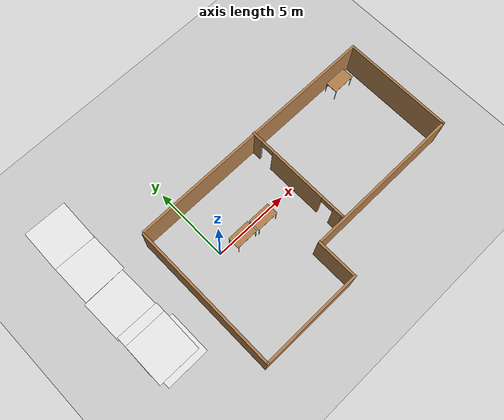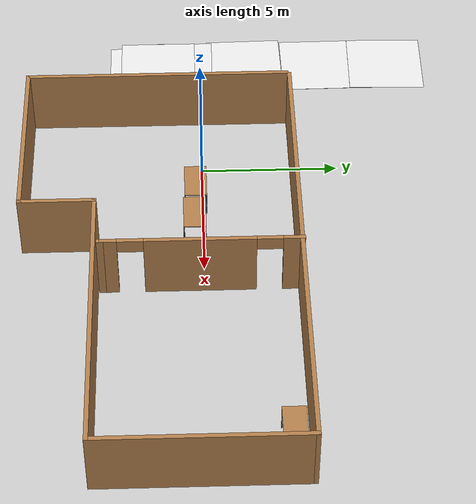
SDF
<sdf version="1.7">
 <world name="default">
  <light name="sun" type="directional">
   <pose>0 0 10 0 -0 0</pose>
   <diffuse>0.8 0.8 0.8 1</diffuse>
   <specular>0.2 0.2 0.2 1</specular>
   <attenuation>
    <range>1000</range>
    <constant>0.9</constant>
    <linear>0.01</linear>
    <quadratic>0.001</quadratic>
   </attenuation>
   <direction>-0.5 0.1 -0.9</direction>
   <spot><inner_angle>0</inner_angle><outer_angle>0</outer_angle><falloff>0</falloff></spot>
  </light>
  <model name="ground_plane">
   <static>1</static>
   <link name="link">
    <collision name="collision">
     <geometry><plane><normal>0 0 1</normal><size>100 100</size></plane></geometry>
     <surface><friction><ode><mu>100</mu><mu2>50</mu2></ode></friction></surface>
    </collision>
    <visual name="visual">
     <cast_shadows>0</cast_shadows>
     <geometry><plane><normal>0 0 1</normal><size>100 100</size></plane></geometry>
     <material>
      <script><uri>file://media/materials/scripts/gazebo.material</uri><name>Gazebo/Grey</name></script>
     </material>
    </visual>
   </link>
  </model>
  <gravity>0 0 -9.8</gravity>
  <magnetic_field>6e-06 2.3e-05 -4.2e-05</magnetic_field>
  <atmosphere type="adiabatic"/>
  <physics type="ode">
   <max_step_size>0.001</max_step_size>
   <real_time_factor>1</real_time_factor>
   <real_time_update_rate>1000</real_time_update_rate>
  </physics>
  <scene><ambient>0.4 0.4 0.4 1</ambient><background>0.7 0.7 0.7 1</background><shadows>1</shadows></scene>
  <audio><device>default</device></audio>
  <spherical_coordinates>
   <surface_model>EARTH_WGS84</surface_model>
   <latitude_deg>0</latitude_deg>
   <longitude_deg>0</longitude_deg>
   <elevation>0</elevation>
   <heading_deg>0</heading_deg>
  </spherical_coordinates>
  <model name="two_rooms_textured">
   <pose>5.81924 -1.50484 0 0 -0 0</pose>
   <link name="Wall_1">
    <collision name="Wall_1_Collision">
     <geometry><box><size>9.75 0.15 2.5</size></box></geometry>
     <pose>0 0 1.25 0 -0 0</pose>
    </collision>
    <visual name="Wall_1_Visual">
     <pose>0 0 1.25 0 -0 0</pose>
     <geometry><box><size>9.75 0.15 2.5</size></box></geometry>
     <material>
      <script><uri>file://media/materials/scripts/gazebo.material</uri><name>Gazebo/Wood</name></script>
      <ambient>1 1 1 1</ambient>
     </material>
     <meta><layer>0</layer></meta>
    </visual>
    <pose>-8.475 -0.066268 0 0 -0 -1.5708</pose>
   </link>
   <link name="Wall_10">
    <collision name="Wall_10_Collision">
     <geometry><box><size>0.25 0.15 2.5</size></box></geometry>
     <pose>0 0 1.25 0 -0 0</pose>
    </collision>
    <visual name="Wall_10_Visual">
     <pose>0 0 1.25 0 -0 0</pose>
     <geometry><box><size>0.25 0.15 2.5</size></box></geometry>
     <material>
      <script><uri>file://media/materials/scripts/gazebo.material</uri><name>Gazebo/Wood</name></script>
      <ambient>1 1 1 1</ambient>
     </material>
     <meta><layer>0</layer></meta>
    </visual>
    <pose>0.118491 -2.03373 0 0 -0 -1.5708</pose>
   </link>
   <link name="Wall_2">
    <collision name="Wall_2_Collision">
     <geometry><box><size>6.75 0.15 2.5</size></box></geometry>
     <pose>0 0 1.25 0 -0 0</pose>
    </collision>
    <visual name="Wall_2_Visual">
     <pose>0 0 1.25 0 -0 0</pose>
     <geometry><box><size>6.75 0.15 2.5</size></box></geometry>
     <material>
      <script><uri>file://media/materials/scripts/gazebo.material</uri><name>Gazebo/Wood</name></script>
      <ambient>1 1 1 1</ambient>
     </material>
     <meta><layer>0</layer></meta>
    </visual>
    <pose>-5.175 -4.86627 0 0 -0 0</pose>
   </link>
   <link name="Wall_3">
    <collision name="Wall_3_Collision">
     <geometry><box><size>2.75 0.15 2.5</size></box></geometry>
     <pose>0 0 1.25 0 -0 0</pose>
    </collision>
    <visual name="Wall_3_Visual">
     <pose>0 0 1.25 0 -0 0</pose>
     <geometry><box><size>2.75 0.15 2.5</size></box></geometry>
     <material>
      <script><uri>file://media/materials/scripts/gazebo.material</uri><name>Gazebo/Wood</name></script>
      <ambient>1 1 1 1</ambient>
     </material>
     <meta><layer>0</layer></meta>
    </visual>
    <pose>-1.875 -3.56627 0 0 -0 1.5708</pose>
   </link>
   <link name="Wall_4">
    <collision name="Wall_4_Collision">
     <geometry><box><size>10.5 0.15 2.5</size></box></geometry>
     <pose>0 0 1.25 0 -0 0</pose>
    </collision>
    <visual name="Wall_4_Visual">
     <pose>0 0 1.25 0 -0 0</pose>
     <geometry><box><size>10.5 0.15 2.5</size></box></geometry>
     <material>
      <script><uri>file://media/materials/scripts/gazebo.material</uri><name>Gazebo/Wood</name></script>
      <ambient>1 1 1 1</ambient>
     </material>
     <meta><layer>0</layer></meta>
    </visual>
    <pose>3.3 -2.26627 0 0 -0 0</pose>
   </link>
   <link name="Wall_5">
    <collision name="Wall_5_Collision">
     <geometry><box><size>7.25 0.15 2.5</size></box></geometry>
     <pose>0 0 1.25 0 -0 0</pose>
    </collision>
    <visual name="Wall_5_Visual">
     <pose>0 0 1.25 0 -0 0</pose>
     <geometry><box><size>7.25 0.15 2.5</size></box></geometry>
     <material>
      <script><uri>file://media/materials/scripts/gazebo.material</uri><name>Gazebo/Wood</name></script>
      <ambient>1 1 1 1</ambient>
     </material>
     <meta><layer>0</layer></meta>
    </visual>
    <pose>8.475 1.28373 0 0 -0 1.5708</pose>
   </link>
   <link name="Wall_6">
    <collision name="Wall_6_Collision">
     <geometry><box><size>17 0.15 2.5</size></box></geometry>
     <pose>0 0 1.25 0 -0 0</pose>
    </collision>
    <visual name="Wall_6_Visual">
     <pose>0 0 1.25 0 -0 0</pose>
     <geometry><box><size>17 0.15 2.5</size></box></geometry>
     <material>
      <script><uri>file://media/materials/scripts/gazebo.material</uri><name>Gazebo/Wood</name></script>
      <ambient>1 1 1 1</ambient>
     </material>
     <meta><layer>0</layer></meta>
    </visual>
    <pose>0.05 4.83373 0 0 -0 3.14159</pose>
   </link>
   <link name="Wall_8">
    <pose>0.118491 1.44127 0 0 -0 -1.5708</pose>
    <visual name="Wall_8_Visual_0">
     <pose>-3.12464 0 1.25 0 -0 0</pose>
     <geometry><box><size>0.750721 0.15 2.5</size></box></geometry>
     <material>
      <script><uri>file://media/materials/scripts/gazebo.material</uri><name>Gazebo/Wood</name></script>
      <ambient>1 1 1 1</ambient>
     </material>
     <meta><layer>0</layer></meta>
    </visual>
    <collision name="Wall_8_Collision_0">
     <geometry><box><size>0.750721 0.15 2.5</size></box></geometry>
     <pose>-3.12464 0 1.25 0 -0 0</pose>
    </collision>
    <visual name="Wall_8_Visual_1">
     <pose>0.075287 0 1.25 0 -0 0</pose>
     <geometry><box><size>3.84913 0.15 2.5</size></box></geometry>
     <material>
      <script><uri>file://media/materials/scripts/gazebo.material</uri><name>Gazebo/Wood</name></script>
      <ambient>1 1 1 1</ambient>
     </material>
     <meta><layer>0</layer></meta>
    </visual>
    <collision name="Wall_8_Collision_1">
     <geometry><box><size>3.84913 0.15 2.5</size></box></geometry>
     <pose>0.075287 0 1.25 0 -0 0</pose>
    </collision>
    <visual name="Wall_8_Visual_2">
     <pose>3.19993 0 1.25 0 -0 0</pose>
     <geometry><box><size>0.600146 0.15 2.5</size></box></geometry>
     <material>
      <script><uri>file://media/materials/scripts/gazebo.material</uri><name>Gazebo/Wood</name></script>
      <ambient>1 1 1 1</ambient>
     </material>
     <meta><layer>0</layer></meta>
    </visual>
    <collision name="Wall_8_Collision_2">
     <geometry><box><size>0.600146 0.15 2.5</size></box></geometry>
     <pose>3.19993 0 1.25 0 -0 0</pose>
    </collision>
    <visual name="Wall_8_Visual_3">
     <pose>-2.29928 0 2.25 0 -0 0</pose>
     <geometry><box><size>0.9 0.15 0.5</size></box></geometry>
     <material>
      <script><uri>file://media/materials/scripts/gazebo.material</uri><name>Gazebo/Wood</name></script>
      <ambient>1 1 1 1</ambient>
     </material>
     <meta><layer>0</layer></meta>
    </visual>
    <collision name="Wall_8_Collision_3">
     <geometry><box><size>0.9 0.15 0.5</size></box></geometry>
     <pose>-2.29928 0 2.25 0 -0 0</pose>
    </collision>
    <visual name="Wall_8_Visual_4">
     <pose>2.44985 0 2.25 0 -0 0</pose>
     <geometry><box><size>0.9 0.15 0.5</size></box></geometry>
     <material>
      <script><uri>file://media/materials/scripts/gazebo.material</uri><name>Gazebo/Wood</name></script>
      <ambient>1 1 1 1</ambient>
     </material>
     <meta><layer>0</layer></meta>
    </visual>
    <collision name="Wall_8_Collision_4">
     <geometry><box><size>0.9 0.15 0.5</size></box></geometry>
     <pose>2.44985 0 2.25 0 -0 0</pose>
    </collision>
   </link>
   <static>1</static>
  </model>
  <model name="table">
   <static>1</static>
   <link name="link">
    <collision name="surface">
     <pose>0 0 1 0 -0 0</pose>
     <geometry><box><size>1.5 0.8 0.03</size></box></geometry>
     <surface><friction><ode><mu>0.6</mu><mu2>0.6</mu2></ode></friction></surface>
    </collision>
    <visual name="visual1">
     <pose>0 0 1 0 -0 0</pose>
     <geometry><box><size>1.5 0.8 0.03</size></box></geometry>
     <material>
      <script><uri>file://media/materials/scripts/gazebo.material</uri><name>Gazebo/Wood</name></script>
     </material>
    </visual>
    <collision name="front_left_leg">
     <pose>0.68 0.38 0.5 0 -0 0</pose>
     <geometry><cylinder><radius>0.02</radius><length>1</length></cylinder></geometry>
    </collision>
    <visual name="front_left_leg">
     <pose>0.68 0.38 0.5 0 -0 0</pose>
     <geometry><cylinder><radius>0.02</radius><length>1</length></cylinder></geometry>
     <material>
      <script><uri>file://media/materials/scripts/gazebo.material</uri><name>Gazebo/Grey</name></script>
     </material>
    </visual>
    <collision name="front_right_leg">
     <pose>0.68 -0.38 0.5 0 -0 0</pose>
     <geometry><cylinder><radius>0.02</radius><length>1</length></cylinder></geometry>
    </collision>
    <visual name="front_right_leg">
     <pose>0.68 -0.38 0.5 0 -0 0</pose>
     <geometry><cylinder><radius>0.02</radius><length>1</length></cylinder></geometry>
     <material>
      <script><uri>file://media/materials/scripts/gazebo.material</uri><name>Gazebo/Grey</name></script>
     </material>
    </visual>
    <collision name="back_right_leg">
     <pose>-0.68 -0.38 0.5 0 -0 0</pose>
     <geometry><cylinder><radius>0.02</radius><length>1</length></cylinder></geometry>
    </collision>
    <visual name="back_right_leg">
     <pose>-0.68 -0.38 0.5 0 -0 0</pose>
     <geometry><cylinder><radius>0.02</radius><length>1</length></cylinder></geometry>
     <material>
      <script><uri>file://media/materials/scripts/gazebo.material</uri><name>Gazebo/Grey</name></script>
     </material>
    </visual>
    <collision name="back_left_leg">
     <pose>-0.68 0.38 0.5 0 -0 0</pose>
     <geometry><cylinder><radius>0.02</radius><length>1</length></cylinder></geometry>
    </collision>
    <visual name="back_left_leg">
     <pose>-0.68 0.38 0.5 0 -0 0</pose>
     <geometry><cylinder><radius>0.02</radius><length>1</length></cylinder></geometry>
     <material>
      <script><uri>file://media/materials/scripts/gazebo.material</uri><name>Gazebo/Grey</name></script>
     </material>
    </visual>
   </link>
   <pose>1.55022 -0.247776 0 0 -0 0</pose>
  </model>
  <model name="table_0">
   <static>1</static>
   <link name="link">
    <collision name="surface">
     <pose>0 0 1 0 -0 0</pose>
     <geometry><box><size>1.5 0.8 0.03</size></box></geometry>
     <surface><friction><ode><mu>0.6</mu><mu2>0.6</mu2></ode></friction></surface>
    </collision>
    <visual name="visual1">
     <pose>0 0 1 0 -0 0</pose>
     <geometry><box><size>1.5 0.8 0.03</size></box></geometry>
     <material>
      <script><uri>file://media/materials/scripts/gazebo.material</uri><name>Gazebo/Wood</name></script>
     </material>
    </visual>
    <collision name="front_left_leg">
     <pose>0.68 0.38 0.5 0 -0 0</pose>
     <geometry><cylinder><radius>0.02</radius><length>1</length></cylinder></geometry>
    </collision>
    <visual name="front_left_leg">
     <pose>0.68 0.38 0.5 0 -0 0</pose>
     <geometry><cylinder><radius>0.02</radius><length>1</length></cylinder></geometry>
     <material>
      <script><uri>file://media/materials/scripts/gazebo.material</uri><name>Gazebo/Grey</name></script>
     </material>
    </visual>
    <collision name="front_right_leg">
     <pose>0.68 -0.38 0.5 0 -0 0</pose>
     <geometry><cylinder><radius>0.02</radius><length>1</length></cylinder></geometry>
    </collision>
    <visual name="front_right_leg">
     <pose>0.68 -0.38 0.5 0 -0 0</pose>
     <geometry><cylinder><radius>0.02</radius><length>1</length></cylinder></geometry>
     <material>
      <script><uri>file://media/materials/scripts/gazebo.material</uri><name>Gazebo/Grey</name></script>
     </material>
    </visual>
    <collision name="back_right_leg">
     <pose>-0.68 -0.38 0.5 0 -0 0</pose>
     <geometry><cylinder><radius>0.02</radius><length>1</length></cylinder></geometry>
    </collision>
    <visual name="back_right_leg">
     <pose>-0.68 -0.38 0.5 0 -0 0</pose>
     <geometry><cylinder><radius>0.02</radius><length>1</length></cylinder></geometry>
     <material>
      <script><uri>file://media/materials/scripts/gazebo.material</uri><name>Gazebo/Grey</name></script>
     </material>
    </visual>
    <collision name="back_left_leg">
     <pose>-0.68 0.38 0.5 0 -0 0</pose>
     <geometry><cylinder><radius>0.02</radius><length>1</length></cylinder></geometry>
    </collision>
    <visual name="back_left_leg">
     <pose>-0.68 0.38 0.5 0 -0 0</pose>
     <geometry><cylinder><radius>0.02</radius><length>1</length></cylinder></geometry>
     <material>
      <script><uri>file://media/materials/scripts/gazebo.material</uri><name>Gazebo/Grey</name></script>
     </material>
    </visual>
   </link>
   <pose>3.13568 -0.302429 0 0 -0 0</pose>
  </model>
  <model name="table_1">
   <static>1</static>
   <link name="link">
    <collision name="surface">
     <pose>0 0 1 0 -0 0</pose>
     <geometry><box><size>1.5 0.8 0.03</size></box></geometry>
     <surface><friction><ode><mu>0.6</mu><mu2>0.6</mu2></ode></friction></surface>
    </collision>
    <visual name="visual1">
     <pose>0 0 1 0 -0 0</pose>
     <geometry><box><size>1.5 0.8 0.03</size></box></geometry>
     <material>
      <script><uri>file://media/materials/scripts/gazebo.material</uri><name>Gazebo/Wood</name></script>
     </material>
    </visual>
    <collision name="front_left_leg">
     <pose>0.68 0.38 0.5 0 -0 0</pose>
     <geometry><cylinder><radius>0.02</radius><length>1</length></cylinder></geometry>
    </collision>
    <visual name="front_left_leg">
     <pose>0.68 0.38 0.5 0 -0 0</pose>
     <geometry><cylinder><radius>0.02</radius><length>1</length></cylinder></geometry>
     <material>
      <script><uri>file://media/materials/scripts/gazebo.material</uri><name>Gazebo/Grey</name></script>
     </material>
    </visual>
    <collision name="front_right_leg">
     <pose>0.68 -0.38 0.5 0 -0 0</pose>
     <geometry><cylinder><radius>0.02</radius><length>1</length></cylinder></geometry>
    </collision>
    <visual name="front_right_leg">
     <pose>0.68 -0.38 0.5 0 -0 0</pose>
     <geometry><cylinder><radius>0.02</radius><length>1</length></cylinder></geometry>
     <material>
      <script><uri>file://media/materials/scripts/gazebo.material</uri><name>Gazebo/Grey</name></script>
     </material>
    </visual>
    <collision name="back_right_leg">
     <pose>-0.68 -0.38 0.5 0 -0 0</pose>
     <geometry><cylinder><radius>0.02</radius><length>1</length></cylinder></geometry>
    </collision>
    <visual name="back_right_leg">
     <pose>-0.68 -0.38 0.5 0 -0 0</pose>
     <geometry><cylinder><radius>0.02</radius><length>1</length></cylinder></geometry>
     <material>
      <script><uri>file://media/materials/scripts/gazebo.material</uri><name>Gazebo/Grey</name></script>
     </material>
    </visual>
    <collision name="back_left_leg">
     <pose>-0.68 0.38 0.5 0 -0 0</pose>
     <geometry><cylinder><radius>0.02</radius><length>1</length></cylinder></geometry>
    </collision>
    <visual name="back_left_leg">
     <pose>-0.68 0.38 0.5 0 -0 0</pose>
     <geometry><cylinder><radius>0.02</radius><length>1</length></cylinder></geometry>
     <material>
      <script><uri>file://media/materials/scripts/gazebo.material</uri><name>Gazebo/Grey</name></script>
     </material>
    </visual>
   </link>
   <pose>12.7962 2.74013 0 0 -0 0</pose>
  </model>
  <model name="maze_base">
   <link name="base">
    <inertial>
     <mass>1</mass>
     <inertia>
      <ixx>1.39394</ixx>
      <ixy>0</ixy>
      <ixz>0</ixz>
      <iyy>0.696972</iyy>
      <iyz>0</iyz>
      <izz>0.696973</izz>
     </inertia>
     <pose>0 0 0.05 0 -0 0</pose>
    </inertial>
    <visual name="visual">
     <pose>0 0 0.0025 0 -0 0</pose>
     <geometry><box><size>2.892 2.892 0.005</size></box></geometry>
     <material>
      <script><uri>file://media/materials/scripts/gazebo.material</uri><name>Gazebo/White</name></script>
     </material>
    </visual>
    <collision name="collision">
     <pose>0 0 0.0025 0 -0 0</pose>
     <geometry><box><size>2.892 2.892 0.005</size></box></geometry>
     <surface><friction><ode><mu>1000</mu><mu2>1000</mu2></ode></friction></surface>
    </collision>
   </link>
   <pose>-6.00494 -0.949083 0.002596 0.0018 -5e-06 -0.013511</pose>
  </model>
  <model name="maze_base_0">
   <link name="base">
    <inertial>
     <mass>1</mass>
     <inertia>
      <ixx>1.39394</ixx>
      <ixy>0</ixy>
      <ixz>0</ixz>
      <iyy>0.696972</iyy>
      <iyz>0</iyz>
      <izz>0.696973</izz>
     </inertia>
     <pose>0 0 0.05 0 -0 0</pose>
    </inertial>
    <visual name="visual">
     <pose>0 0 0.0025 0 -0 0</pose>
     <geometry><box><size>2.892 2.892 0.005</size></box></geometry>
     <material>
      <script><uri>file://media/materials/scripts/gazebo.material</uri><name>Gazebo/White</name></script>
     </material>
    </visual>
    <collision name="collision">
     <pose>0 0 0.0025 0 -0 0</pose>
     <geometry><box><size>2.892 2.892 0.005</size></box></geometry>
     <surface><friction><ode><mu>1000</mu><mu2>1000</mu2></ode></friction></surface>
    </collision>
   </link>
   <pose>-6.08789 1.78235 4e-05 0.000104 -5.6e-05 0.02229</pose>
  </model>
  <model name="maze_base_1">
   <link name="base">
    <inertial>
     <mass>1</mass>
     <inertia>
      <ixx>1.39394</ixx>
      <ixy>0</ixy>
      <ixz>0</ixz>
      <iyy>0.696972</iyy>
      <iyz>0</iyz>
      <izz>0.696973</izz>
     </inertia>
     <pose>0 0 0.05 0 -0 0</pose>
    </inertial>
    <visual name="visual">
     <pose>0 0 0.0025 0 -0 0</pose>
     <geometry><box><size>2.892 2.892 0.005</size></box></geometry>
     <material>
      <script><uri>file://media/materials/scripts/gazebo.material</uri><name>Gazebo/White</name></script>
     </material>
    </visual>
    <collision name="collision">
     <pose>0 0 0.0025 0 -0 0</pose>
     <geometry><box><size>2.892 2.892 0.005</size></box></geometry>
     <surface><friction><ode><mu>1000</mu><mu2>1000</mu2></ode></friction></surface>
    </collision>
   </link>
   <pose>-6.0058 4.69226 -1.9e-05 1e-05 1.8e-05 0.010542</pose>
  </model>
  <model name="maze_base_2">
   <link name="base">
    <inertial>
     <mass>1</mass>
     <inertia>
      <ixx>1.39394</ixx>
      <ixy>0</ixy>
      <ixz>0</ixz>
      <iyy>0.696972</iyy>
      <iyz>0</iyz>
      <izz>0.696973</izz>
     </inertia>
     <pose>0 0 0.05 0 -0 0</pose>
    </inertial>
    <visual name="visual">
     <pose>0 0 0.0025 0 -0 0</pose>
     <geometry><box><size>2.892 2.892 0.005</size></box></geometry>
     <material>
      <script><uri>file://media/materials/scripts/gazebo.material</uri><name>Gazebo/White</name></script>
     </material>
    </visual>
    <collision name="collision">
     <pose>0 0 0.0025 0 -0 0</pose>
     <geometry><box><size>2.892 2.892 0.005</size></box></geometry>
     <surface><friction><ode><mu>1000</mu><mu2>1000</mu2></ode></friction></surface>
    </collision>
   </link>
   <pose>-5.9987 7.35343 0.002732 -0.001856 -7e-05 -0.022614</pose>
  </model>
  <model name="maze_base_3">
   <link name="base">
    <inertial>
     <mass>1</mass>
     <inertia>
      <ixx>1.39394</ixx>
      <ixy>0</ixy>
      <ixz>0</ixz>
      <iyy>0.696972</iyy>
      <iyz>0</iyz>
      <izz>0.696973</izz>
     </inertia>
     <pose>0 0 0.05 0 -0 0</pose>
    </inertial>
    <visual name="visual">
     <pose>0 0 0.0025 0 -0 0</pose>
     <geometry><box><size>2.892 2.892 0.005</size></box></geometry>
     <material>
      <script><uri>file://media/materials/scripts/gazebo.material</uri><name>Gazebo/White</name></script>
     </material>
    </visual>
    <collision name="collision">
     <pose>0 0 0.0025 0 -0 0</pose>
     <geometry><box><size>2.892 2.892 0.005</size></box></geometry>
     <surface><friction><ode><mu>1000</mu><mu2>1000</mu2></ode></friction></surface>
    </collision>
   </link>
   <pose>-5.99375 -1.6217 0.011362 0.0018 -4e-05 -0.002504</pose>
  </model>
  <model name="maze_base_4">
   <link name="base">
    <inertial>
     <mass>1</mass>
     <inertia>
      <ixx>1.39394</ixx>
      <ixy>0</ixy>
      <ixz>0</ixz>
      <iyy>0.696972</iyy>
      <iyz>0</iyz>
      <izz>0.696973</izz>
     </inertia>
     <pose>0 0 0.05 0 -0 0</pose>
    </inertial>
    <visual name="visual">
     <pose>0 0 0.0025 0 -0 0</pose>
     <geometry><box><size>2.892 2.892 0.005</size></box></geometry>
     <material>
      <script><uri>file://media/materials/scripts/gazebo.material</uri><name>Gazebo/White</name></script>
     </material>
    </visual>
    <collision name="collision">
     <pose>0 0 0.0025 0 -0 0</pose>
     <geometry><box><size>2.892 2.892 0.005</size></box></geometry>
     <surface><friction><ode><mu>1000</mu><mu2>1000</mu2></ode></friction></surface>
    </collision>
   </link>
   <pose>-5.75074 -2.0444 0.005625 0.001811 -3e-05 0.004905</pose>
  </model>
 </world>
</sdf>
